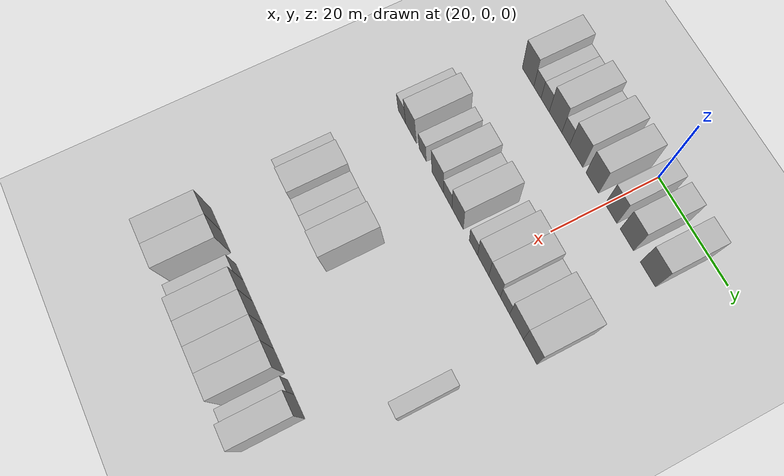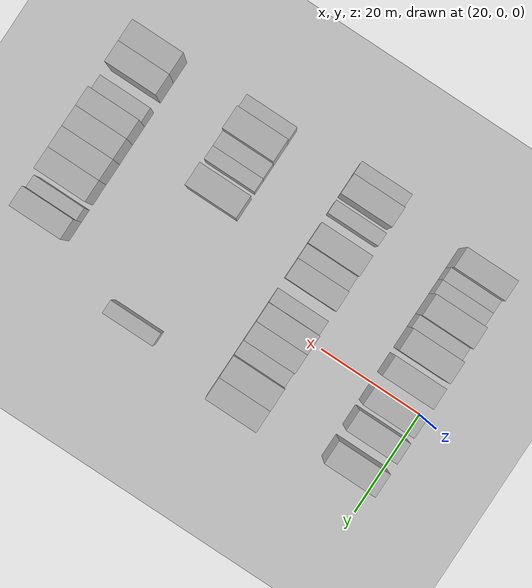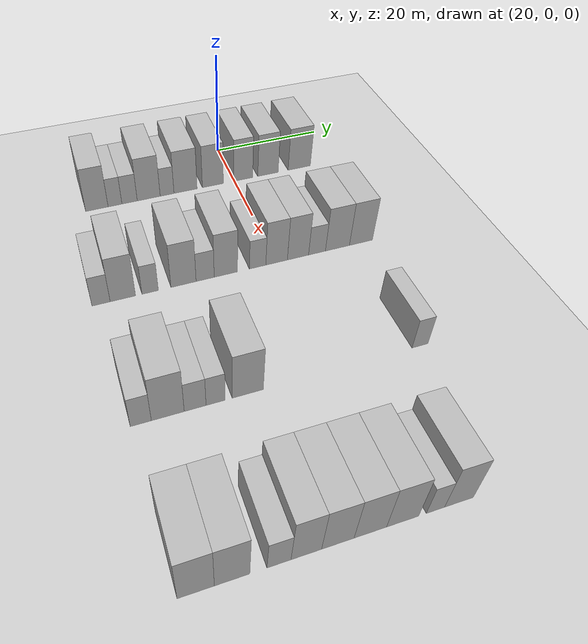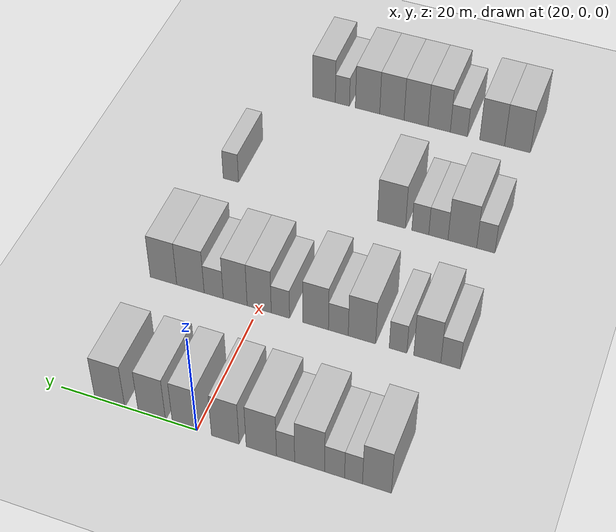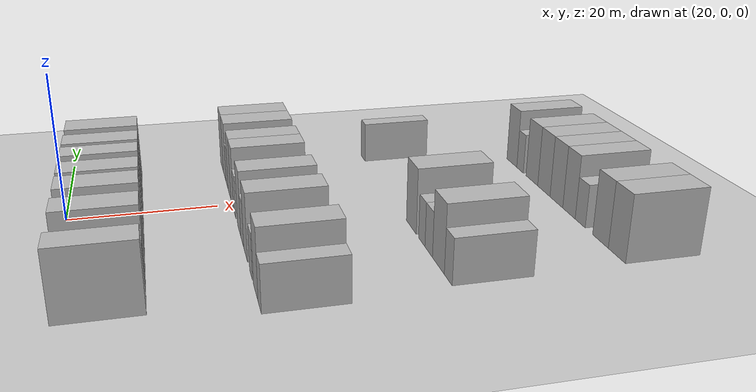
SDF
<sdf version="1.6">
 <world name="default">
  <include><name>ground_plane_1</name><uri>model://HANNAS_ground_plane</uri></include>
  <model name="building_86">
   <static>1</static>
   <pose>25.0000 -25.2728 0 0.000000 0.000000 0.000000</pose>
   <link name="link">
    <pose>0 0 4.50 0 0 0</pose>
    <collision name="collision"><geometry><box><size>10.0000 3.9410 9.0000</size></box></geometry></collision>
    <visual name="visual">
     <cast_shadows>0</cast_shadows>
     <geometry><box><size>10.0000 3.9410 9.0000</size></box></geometry>
     <material>
      <script>
       <uri>model://HANNAS_wall/materials/scripts</uri>
       <uri>model://HANNAS_wall/materials/textures</uri>
       <name>vrc/HANNAS_wall</name>
      </script>
     </material>
    </visual>
   </link>
  </model>
  <model name="building_87">
   <static>1</static>
   <pose>25.0000 -22.0750 0 0.000000 0.000000 0.000000</pose>
   <link name="link">
    <pose>0 0 3.00 0 0 0</pose>
    <collision name="collision"><geometry><box><size>10.0000 2.4546 6.0000</size></box></geometry></collision>
    <visual name="visual">
     <cast_shadows>0</cast_shadows>
     <geometry><box><size>10.0000 2.4546 6.0000</size></box></geometry>
     <material>
      <script>
       <uri>model://HANNAS_wall/materials/scripts</uri>
       <uri>model://HANNAS_wall/materials/textures</uri>
       <name>vrc/HANNAS_wall</name>
      </script>
     </material>
    </visual>
   </link>
  </model>
  <model name="building_88">
   <static>1</static>
   <pose>25.0000 -19.4703 0 0.000000 0.000000 0.000000</pose>
   <link name="link">
    <pose>0 0 3.00 0 0 0</pose>
    <collision name="collision"><geometry><box><size>10.0000 2.7548 6.0000</size></box></geometry></collision>
    <visual name="visual">
     <cast_shadows>0</cast_shadows>
     <geometry><box><size>10.0000 2.7548 6.0000</size></box></geometry>
     <material>
      <script>
       <uri>model://HANNAS_wall/materials/scripts</uri>
       <uri>model://HANNAS_wall/materials/textures</uri>
       <name>vrc/HANNAS_wall</name>
      </script>
     </material>
    </visual>
   </link>
  </model>
  <model name="building_89">
   <static>1</static>
   <pose>25.0000 -16.0093 0 0.000000 0.000000 0.000000</pose>
   <link name="link">
    <pose>0 0 4.50 0 0 0</pose>
    <collision name="collision"><geometry><box><size>10.0000 4.1673 9.0000</size></box></geometry></collision>
    <visual name="visual">
     <cast_shadows>0</cast_shadows>
     <geometry><box><size>10.0000 4.1673 9.0000</size></box></geometry>
     <material>
      <script>
       <uri>model://HANNAS_wall/materials/scripts</uri>
       <uri>model://HANNAS_wall/materials/textures</uri>
       <name>vrc/HANNAS_wall</name>
      </script>
     </material>
    </visual>
   </link>
  </model>
  <model name="building_90">
   <static>1</static>
   <pose>25.0000 -12.6539 0 0.000000 0.000000 0.000000</pose>
   <link name="link">
    <pose>0 0 3.00 0 0 0</pose>
    <collision name="collision"><geometry><box><size>10.0000 2.5434 6.0000</size></box></geometry></collision>
    <visual name="visual">
     <cast_shadows>0</cast_shadows>
     <geometry><box><size>10.0000 2.5434 6.0000</size></box></geometry>
     <material>
      <script>
       <uri>model://HANNAS_wall/materials/scripts</uri>
       <uri>model://HANNAS_wall/materials/textures</uri>
       <name>vrc/HANNAS_wall</name>
      </script>
     </material>
    </visual>
   </link>
  </model>
  <model name="building_91">
   <static>1</static>
   <pose>25.0000 -9.2361 0 0.000000 0.000000 0.000000</pose>
   <link name="link">
    <pose>0 0 4.50 0 0 0</pose>
    <collision name="collision"><geometry><box><size>10.0000 4.2923 9.0000</size></box></geometry></collision>
    <visual name="visual">
     <cast_shadows>0</cast_shadows>
     <geometry><box><size>10.0000 4.2923 9.0000</size></box></geometry>
     <material>
      <script>
       <uri>model://HANNAS_wall/materials/scripts</uri>
       <uri>model://HANNAS_wall/materials/textures</uri>
       <name>vrc/HANNAS_wall</name>
      </script>
     </material>
    </visual>
   </link>
  </model>
  <model name="building_92">
   <static>1</static>
   <pose>25.0000 -4.1065 0 0.000000 0.000000 0.000000</pose>
   <link name="link">
    <pose>0 0 4.50 0 0 0</pose>
    <collision name="collision"><geometry><box><size>10.0000 3.9671 9.0000</size></box></geometry></collision>
    <visual name="visual">
     <cast_shadows>0</cast_shadows>
     <geometry><box><size>10.0000 3.9671 9.0000</size></box></geometry>
     <material>
      <script>
       <uri>model://HANNAS_wall/materials/scripts</uri>
       <uri>model://HANNAS_wall/materials/textures</uri>
       <name>vrc/HANNAS_wall</name>
      </script>
     </material>
    </visual>
   </link>
  </model>
  <model name="building_93">
   <static>1</static>
   <pose>25.0000 1.7117 0 0.000000 0.000000 0.000000</pose>
   <link name="link">
    <pose>0 0 4.50 0 0 0</pose>
    <collision name="collision"><geometry><box><size>10.0000 3.6692 9.0000</size></box></geometry></collision>
    <visual name="visual">
     <cast_shadows>0</cast_shadows>
     <geometry><box><size>10.0000 3.6692 9.0000</size></box></geometry>
     <material>
      <script>
       <uri>model://HANNAS_wall/materials/scripts</uri>
       <uri>model://HANNAS_wall/materials/textures</uri>
       <name>vrc/HANNAS_wall</name>
      </script>
     </material>
    </visual>
   </link>
  </model>
  <model name="building_94">
   <static>1</static>
   <pose>25.0000 6.5533 0 0.000000 0.000000 0.000000</pose>
   <link name="link">
    <pose>0 0 4.50 0 0 0</pose>
    <collision name="collision"><geometry><box><size>10.0000 4.0141 9.0000</size></box></geometry></collision>
    <visual name="visual">
     <cast_shadows>0</cast_shadows>
     <geometry><box><size>10.0000 4.0141 9.0000</size></box></geometry>
     <material>
      <script>
       <uri>model://HANNAS_wall/materials/scripts</uri>
       <uri>model://HANNAS_wall/materials/textures</uri>
       <name>vrc/HANNAS_wall</name>
      </script>
     </material>
    </visual>
   </link>
  </model>
  <model name="building_95">
   <static>1</static>
   <pose>25.0000 12.7944 0 0.000000 0.000000 0.000000</pose>
   <link name="link">
    <pose>0 0 4.50 0 0 0</pose>
    <collision name="collision"><geometry><box><size>10.0000 4.4681 9.0000</size></box></geometry></collision>
    <visual name="visual">
     <cast_shadows>0</cast_shadows>
     <geometry><box><size>10.0000 4.4681 9.0000</size></box></geometry>
     <material>
      <script>
       <uri>model://HANNAS_wall/materials/scripts</uri>
       <uri>model://HANNAS_wall/materials/textures</uri>
       <name>vrc/HANNAS_wall</name>
      </script>
     </material>
    </visual>
   </link>
  </model>
  <model name="building_266">
   <static>1</static>
   <pose>47.0000 -28.4433 0 0.000000 0.000000 0.000000</pose>
   <link name="link">
    <pose>0 0 3.00 0 0 0</pose>
    <collision name="collision"><geometry><box><size>10.0000 2.7791 6.0000</size></box></geometry></collision>
    <visual name="visual">
     <cast_shadows>0</cast_shadows>
     <geometry><box><size>10.0000 2.7791 6.0000</size></box></geometry>
     <material>
      <script>
       <uri>model://HANNAS_wall/materials/scripts</uri>
       <uri>model://HANNAS_wall/materials/textures</uri>
       <name>vrc/HANNAS_wall</name>
      </script>
     </material>
    </visual>
   </link>
  </model>
  <model name="building_267">
   <static>1</static>
   <pose>47.0000 -25.0952 0 0.000000 0.000000 0.000000</pose>
   <link name="link">
    <pose>0 0 4.50 0 0 0</pose>
    <collision name="collision"><geometry><box><size>10.0000 3.9172 9.0000</size></box></geometry></collision>
    <visual name="visual">
     <cast_shadows>0</cast_shadows>
     <geometry><box><size>10.0000 3.9172 9.0000</size></box></geometry>
     <material>
      <script>
       <uri>model://HANNAS_wall/materials/scripts</uri>
       <uri>model://HANNAS_wall/materials/textures</uri>
       <name>vrc/HANNAS_wall</name>
      </script>
     </material>
    </visual>
   </link>
  </model>
  <model name="building_268">
   <static>1</static>
   <pose>47.0000 -20.8453 0 0.000000 0.000000 0.000000</pose>
   <link name="link">
    <pose>0 0 3.00 0 0 0</pose>
    <collision name="collision"><geometry><box><size>10.0000 2.5826 6.0000</size></box></geometry></collision>
    <visual name="visual">
     <cast_shadows>0</cast_shadows>
     <geometry><box><size>10.0000 2.5826 6.0000</size></box></geometry>
     <material>
      <script>
       <uri>model://HANNAS_wall/materials/scripts</uri>
       <uri>model://HANNAS_wall/materials/textures</uri>
       <name>vrc/HANNAS_wall</name>
      </script>
     </material>
    </visual>
   </link>
  </model>
  <model name="building_269">
   <static>1</static>
   <pose>47.0000 -15.5282 0 0.000000 0.000000 0.000000</pose>
   <link name="link">
    <pose>0 0 4.50 0 0 0</pose>
    <collision name="collision"><geometry><box><size>10.0000 4.0515 9.0000</size></box></geometry></collision>
    <visual name="visual">
     <cast_shadows>0</cast_shadows>
     <geometry><box><size>10.0000 4.0515 9.0000</size></box></geometry>
     <material>
      <script>
       <uri>model://HANNAS_wall/materials/scripts</uri>
       <uri>model://HANNAS_wall/materials/textures</uri>
       <name>vrc/HANNAS_wall</name>
      </script>
     </material>
    </visual>
   </link>
  </model>
  <model name="building_270">
   <static>1</static>
   <pose>47.0000 -12.0247 0 0.000000 0.000000 0.000000</pose>
   <link name="link">
    <pose>0 0 3.00 0 0 0</pose>
    <collision name="collision"><geometry><box><size>10.0000 2.9556 6.0000</size></box></geometry></collision>
    <visual name="visual">
     <cast_shadows>0</cast_shadows>
     <geometry><box><size>10.0000 2.9556 6.0000</size></box></geometry>
     <material>
      <script>
       <uri>model://HANNAS_wall/materials/scripts</uri>
       <uri>model://HANNAS_wall/materials/textures</uri>
       <name>vrc/HANNAS_wall</name>
      </script>
     </material>
    </visual>
   </link>
  </model>
  <model name="building_271">
   <static>1</static>
   <pose>47.0000 -8.6190 0 0.000000 0.000000 0.000000</pose>
   <link name="link">
    <pose>0 0 4.50 0 0 0</pose>
    <collision name="collision"><geometry><box><size>10.0000 3.8558 9.0000</size></box></geometry></collision>
    <visual name="visual">
     <cast_shadows>0</cast_shadows>
     <geometry><box><size>10.0000 3.8558 9.0000</size></box></geometry>
     <material>
      <script>
       <uri>model://HANNAS_wall/materials/scripts</uri>
       <uri>model://HANNAS_wall/materials/textures</uri>
       <name>vrc/HANNAS_wall</name>
      </script>
     </material>
    </visual>
   </link>
  </model>
  <model name="building_272">
   <static>1</static>
   <pose>47.0000 -3.2991 0 0.000000 0.000000 0.000000</pose>
   <link name="link">
    <pose>0 0 3.00 0 0 0</pose>
    <collision name="collision"><geometry><box><size>10.0000 2.7840 6.0000</size></box></geometry></collision>
    <visual name="visual">
     <cast_shadows>0</cast_shadows>
     <geometry><box><size>10.0000 2.7840 6.0000</size></box></geometry>
     <material>
      <script>
       <uri>model://HANNAS_wall/materials/scripts</uri>
       <uri>model://HANNAS_wall/materials/textures</uri>
       <name>vrc/HANNAS_wall</name>
      </script>
     </material>
    </visual>
   </link>
  </model>
  <model name="building_273">
   <static>1</static>
   <pose>47.0000 -0.0549 0 0.000000 0.000000 0.000000</pose>
   <link name="link">
    <pose>0 0 4.50 0 0 0</pose>
    <collision name="collision"><geometry><box><size>10.0000 3.7044 9.0000</size></box></geometry></collision>
    <visual name="visual">
     <cast_shadows>0</cast_shadows>
     <geometry><box><size>10.0000 3.7044 9.0000</size></box></geometry>
     <material>
      <script>
       <uri>model://HANNAS_wall/materials/scripts</uri>
       <uri>model://HANNAS_wall/materials/textures</uri>
       <name>vrc/HANNAS_wall</name>
      </script>
     </material>
    </visual>
   </link>
  </model>
  <model name="building_274">
   <static>1</static>
   <pose>47.0000 3.6464 0 0.000000 0.000000 0.000000</pose>
   <link name="link">
    <pose>0 0 4.50 0 0 0</pose>
    <collision name="collision"><geometry><box><size>10.0000 3.6980 9.0000</size></box></geometry></collision>
    <visual name="visual">
     <cast_shadows>0</cast_shadows>
     <geometry><box><size>10.0000 3.6980 9.0000</size></box></geometry>
     <material>
      <script>
       <uri>model://HANNAS_wall/materials/scripts</uri>
       <uri>model://HANNAS_wall/materials/textures</uri>
       <name>vrc/HANNAS_wall</name>
      </script>
     </material>
    </visual>
   </link>
  </model>
  <model name="building_275">
   <static>1</static>
   <pose>47.0000 6.9834 0 0.000000 0.000000 0.000000</pose>
   <link name="link">
    <pose>0 0 3.00 0 0 0</pose>
    <collision name="collision"><geometry><box><size>10.0000 2.9760 6.0000</size></box></geometry></collision>
    <visual name="visual">
     <cast_shadows>0</cast_shadows>
     <geometry><box><size>10.0000 2.9760 6.0000</size></box></geometry>
     <material>
      <script>
       <uri>model://HANNAS_wall/materials/scripts</uri>
       <uri>model://HANNAS_wall/materials/textures</uri>
       <name>vrc/HANNAS_wall</name>
      </script>
     </material>
    </visual>
   </link>
  </model>
  <model name="building_276">
   <static>1</static>
   <pose>47.0000 10.6266 0 0.000000 0.000000 0.000000</pose>
   <link name="link">
    <pose>0 0 4.50 0 0 0</pose>
    <collision name="collision"><geometry><box><size>10.0000 4.3105 9.0000</size></box></geometry></collision>
    <visual name="visual">
     <cast_shadows>0</cast_shadows>
     <geometry><box><size>10.0000 4.3105 9.0000</size></box></geometry>
     <material>
      <script>
       <uri>model://HANNAS_wall/materials/scripts</uri>
       <uri>model://HANNAS_wall/materials/textures</uri>
       <name>vrc/HANNAS_wall</name>
      </script>
     </material>
    </visual>
   </link>
  </model>
  <model name="building_277">
   <static>1</static>
   <pose>47.0000 14.8785 0 0.000000 0.000000 0.000000</pose>
   <link name="link">
    <pose>0 0 4.50 0 0 0</pose>
    <collision name="collision"><geometry><box><size>10.0000 4.1932 9.0000</size></box></geometry></collision>
    <visual name="visual">
     <cast_shadows>0</cast_shadows>
     <geometry><box><size>10.0000 4.1932 9.0000</size></box></geometry>
     <material>
      <script>
       <uri>model://HANNAS_wall/materials/scripts</uri>
       <uri>model://HANNAS_wall/materials/textures</uri>
       <name>vrc/HANNAS_wall</name>
      </script>
     </material>
    </visual>
   </link>
  </model>
  <model name="building_457">
   <static>1</static>
   <pose>69.0000 -27.1706 0 0.000000 0.000000 0.000000</pose>
   <link name="link">
    <pose>0 0 3.00 0 0 0</pose>
    <collision name="collision"><geometry><box><size>10.0000 2.7872 6.0000</size></box></geometry></collision>
    <visual name="visual">
     <cast_shadows>0</cast_shadows>
     <geometry><box><size>10.0000 2.7872 6.0000</size></box></geometry>
     <material>
      <script>
       <uri>model://HANNAS_wall/materials/scripts</uri>
       <uri>model://HANNAS_wall/materials/textures</uri>
       <name>vrc/HANNAS_wall</name>
      </script>
     </material>
    </visual>
   </link>
  </model>
  <model name="building_458">
   <static>1</static>
   <pose>69.0000 -23.5649 0 0.000000 0.000000 0.000000</pose>
   <link name="link">
    <pose>0 0 4.50 0 0 0</pose>
    <collision name="collision"><geometry><box><size>10.0000 4.4243 9.0000</size></box></geometry></collision>
    <visual name="visual">
     <cast_shadows>0</cast_shadows>
     <geometry><box><size>10.0000 4.4243 9.0000</size></box></geometry>
     <material>
      <script>
       <uri>model://HANNAS_wall/materials/scripts</uri>
       <uri>model://HANNAS_wall/materials/textures</uri>
       <name>vrc/HANNAS_wall</name>
      </script>
     </material>
    </visual>
   </link>
  </model>
  <model name="building_459">
   <static>1</static>
   <pose>69.0000 -19.8595 0 0.000000 0.000000 0.000000</pose>
   <link name="link">
    <pose>0 0 3.00 0 0 0</pose>
    <collision name="collision"><geometry><box><size>10.0000 2.9865 6.0000</size></box></geometry></collision>
    <visual name="visual">
     <cast_shadows>0</cast_shadows>
     <geometry><box><size>10.0000 2.9865 6.0000</size></box></geometry>
     <material>
      <script>
       <uri>model://HANNAS_wall/materials/scripts</uri>
       <uri>model://HANNAS_wall/materials/textures</uri>
       <name>vrc/HANNAS_wall</name>
      </script>
     </material>
    </visual>
   </link>
  </model>
  <model name="building_460">
   <static>1</static>
   <pose>69.0000 -17.0446 0 0.000000 0.000000 0.000000</pose>
   <link name="link">
    <pose>0 0 3.00 0 0 0</pose>
    <collision name="collision"><geometry><box><size>10.0000 2.6432 6.0000</size></box></geometry></collision>
    <visual name="visual">
     <cast_shadows>0</cast_shadows>
     <geometry><box><size>10.0000 2.6432 6.0000</size></box></geometry>
     <material>
      <script>
       <uri>model://HANNAS_wall/materials/scripts</uri>
       <uri>model://HANNAS_wall/materials/textures</uri>
       <name>vrc/HANNAS_wall</name>
      </script>
     </material>
    </visual>
   </link>
  </model>
  <model name="building_461">
   <static>1</static>
   <pose>69.0000 -12.5145 0 0.000000 0.000000 0.000000</pose>
   <link name="link">
    <pose>0 0 4.50 0 0 0</pose>
    <collision name="collision"><geometry><box><size>10.0000 4.4171 9.0000</size></box></geometry></collision>
    <visual name="visual">
     <cast_shadows>0</cast_shadows>
     <geometry><box><size>10.0000 4.4171 9.0000</size></box></geometry>
     <material>
      <script>
       <uri>model://HANNAS_wall/materials/scripts</uri>
       <uri>model://HANNAS_wall/materials/textures</uri>
       <name>vrc/HANNAS_wall</name>
      </script>
     </material>
    </visual>
   </link>
  </model>
  <model name="building_462">
   <static>1</static>
   <pose>69.0000 13.5328 0 0.000000 0.000000 0.000000</pose>
   <link name="link">
    <pose>0 0 3.00 0 0 0</pose>
    <collision name="collision"><geometry><box><size>10.0000 2.5591 6.0000</size></box></geometry></collision>
    <visual name="visual">
     <cast_shadows>0</cast_shadows>
     <geometry><box><size>10.0000 2.5591 6.0000</size></box></geometry>
     <material>
      <script>
       <uri>model://HANNAS_wall/materials/scripts</uri>
       <uri>model://HANNAS_wall/materials/textures</uri>
       <name>vrc/HANNAS_wall</name>
      </script>
     </material>
    </visual>
   </link>
  </model>
  <model name="building_637">
   <static>1</static>
   <pose>91.0000 -26.0014 0 0.000000 0.000000 0.000000</pose>
   <link name="link">
    <pose>0 0 4.50 0 0 0</pose>
    <collision name="collision"><geometry><box><size>10.0000 4.1807 9.0000</size></box></geometry></collision>
    <visual name="visual">
     <cast_shadows>0</cast_shadows>
     <geometry><box><size>10.0000 4.1807 9.0000</size></box></geometry>
     <material>
      <script>
       <uri>model://HANNAS_wall/materials/scripts</uri>
       <uri>model://HANNAS_wall/materials/textures</uri>
       <name>vrc/HANNAS_wall</name>
      </script>
     </material>
    </visual>
   </link>
  </model>
  <model name="building_638">
   <static>1</static>
   <pose>91.0000 -21.8785 0 0.000000 0.000000 0.000000</pose>
   <link name="link">
    <pose>0 0 4.50 0 0 0</pose>
    <collision name="collision"><geometry><box><size>10.0000 4.0651 9.0000</size></box></geometry></collision>
    <visual name="visual">
     <cast_shadows>0</cast_shadows>
     <geometry><box><size>10.0000 4.0651 9.0000</size></box></geometry>
     <material>
      <script>
       <uri>model://HANNAS_wall/materials/scripts</uri>
       <uri>model://HANNAS_wall/materials/textures</uri>
       <name>vrc/HANNAS_wall</name>
      </script>
     </material>
    </visual>
   </link>
  </model>
  <model name="building_639">
   <static>1</static>
   <pose>91.0000 -16.4216 0 0.000000 0.000000 0.000000</pose>
   <link name="link">
    <pose>0 0 3.00 0 0 0</pose>
    <collision name="collision"><geometry><box><size>10.0000 2.8486 6.0000</size></box></geometry></collision>
    <visual name="visual">
     <cast_shadows>0</cast_shadows>
     <geometry><box><size>10.0000 2.8486 6.0000</size></box></geometry>
     <material>
      <script>
       <uri>model://HANNAS_wall/materials/scripts</uri>
       <uri>model://HANNAS_wall/materials/textures</uri>
       <name>vrc/HANNAS_wall</name>
      </script>
     </material>
    </visual>
   </link>
  </model>
  <model name="building_640">
   <static>1</static>
   <pose>91.0000 -13.1471 0 0.000000 0.000000 0.000000</pose>
   <link name="link">
    <pose>0 0 4.50 0 0 0</pose>
    <collision name="collision"><geometry><box><size>10.0000 3.7005 9.0000</size></box></geometry></collision>
    <visual name="visual">
     <cast_shadows>0</cast_shadows>
     <geometry><box><size>10.0000 3.7005 9.0000</size></box></geometry>
     <material>
      <script>
       <uri>model://HANNAS_wall/materials/scripts</uri>
       <uri>model://HANNAS_wall/materials/textures</uri>
       <name>vrc/HANNAS_wall</name>
      </script>
     </material>
    </visual>
   </link>
  </model>
  <model name="building_641">
   <static>1</static>
   <pose>91.0000 -9.2878 0 0.000000 0.000000 0.000000</pose>
   <link name="link">
    <pose>0 0 4.50 0 0 0</pose>
    <collision name="collision"><geometry><box><size>10.0000 4.0180 9.0000</size></box></geometry></collision>
    <visual name="visual">
     <cast_shadows>0</cast_shadows>
     <geometry><box><size>10.0000 4.0180 9.0000</size></box></geometry>
     <material>
      <script>
       <uri>model://HANNAS_wall/materials/scripts</uri>
       <uri>model://HANNAS_wall/materials/textures</uri>
       <name>vrc/HANNAS_wall</name>
      </script>
     </material>
    </visual>
   </link>
  </model>
  <model name="building_642">
   <static>1</static>
   <pose>91.0000 -5.2206 0 0.000000 0.000000 0.000000</pose>
   <link name="link">
    <pose>0 0 4.50 0 0 0</pose>
    <collision name="collision"><geometry><box><size>10.0000 4.1164 9.0000</size></box></geometry></collision>
    <visual name="visual">
     <cast_shadows>0</cast_shadows>
     <geometry><box><size>10.0000 4.1164 9.0000</size></box></geometry>
     <material>
      <script>
       <uri>model://HANNAS_wall/materials/scripts</uri>
       <uri>model://HANNAS_wall/materials/textures</uri>
       <name>vrc/HANNAS_wall</name>
      </script>
     </material>
    </visual>
   </link>
  </model>
  <model name="building_643">
   <static>1</static>
   <pose>91.0000 -1.0824 0 0.000000 0.000000 0.000000</pose>
   <link name="link">
    <pose>0 0 4.50 0 0 0</pose>
    <collision name="collision"><geometry><box><size>10.0000 4.1600 9.0000</size></box></geometry></collision>
    <visual name="visual">
     <cast_shadows>0</cast_shadows>
     <geometry><box><size>10.0000 4.1600 9.0000</size></box></geometry>
     <material>
      <script>
       <uri>model://HANNAS_wall/materials/scripts</uri>
       <uri>model://HANNAS_wall/materials/textures</uri>
       <name>vrc/HANNAS_wall</name>
      </script>
     </material>
    </visual>
   </link>
  </model>
  <model name="building_644">
   <static>1</static>
   <pose>91.0000 3.2133 0 0.000000 0.000000 0.000000</pose>
   <link name="link">
    <pose>0 0 3.00 0 0 0</pose>
    <collision name="collision"><geometry><box><size>10.0000 2.4314 6.0000</size></box></geometry></collision>
    <visual name="visual">
     <cast_shadows>0</cast_shadows>
     <geometry><box><size>10.0000 2.4314 6.0000</size></box></geometry>
     <material>
      <script>
       <uri>model://HANNAS_wall/materials/scripts</uri>
       <uri>model://HANNAS_wall/materials/textures</uri>
       <name>vrc/HANNAS_wall</name>
      </script>
     </material>
    </visual>
   </link>
  </model>
  <model name="building_645">
   <static>1</static>
   <pose>91.0000 6.3686 0 0.000000 0.000000 0.000000</pose>
   <link name="link">
    <pose>0 0 4.50 0 0 0</pose>
    <collision name="collision"><geometry><box><size>10.0000 3.8794 9.0000</size></box></geometry></collision>
    <visual name="visual">
     <cast_shadows>0</cast_shadows>
     <geometry><box><size>10.0000 3.8794 9.0000</size></box></geometry>
     <material>
      <script>
       <uri>model://HANNAS_wall/materials/scripts</uri>
       <uri>model://HANNAS_wall/materials/textures</uri>
       <name>vrc/HANNAS_wall</name>
      </script>
     </material>
    </visual>
   </link>
  </model>
 </world>
</sdf>
